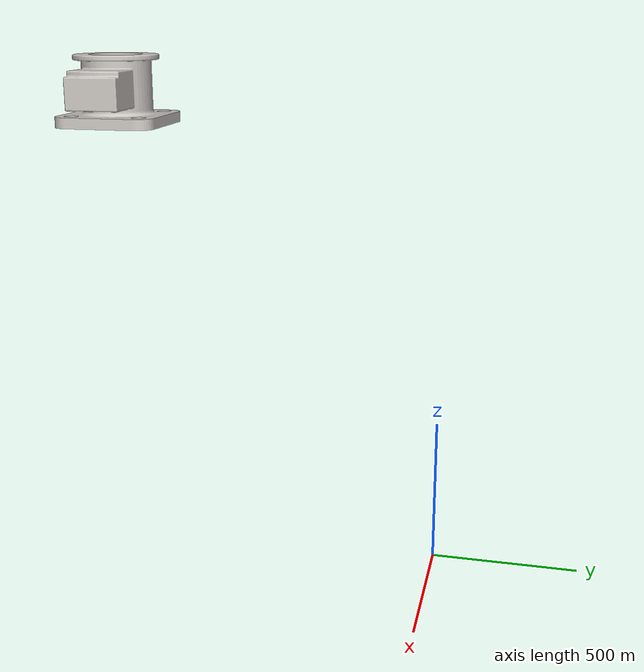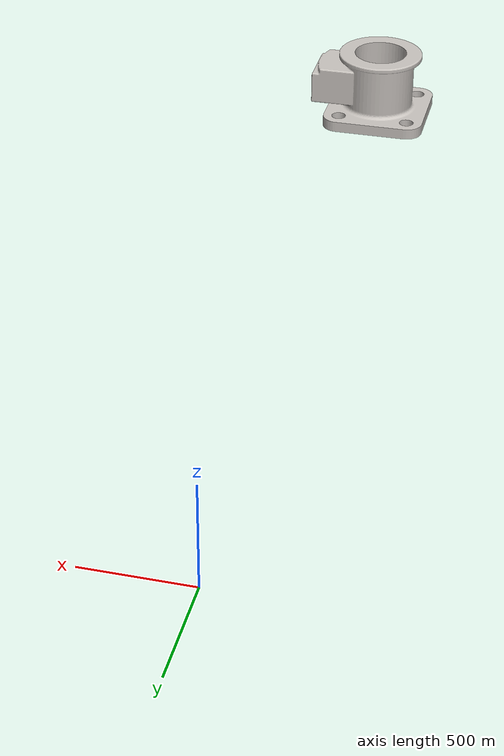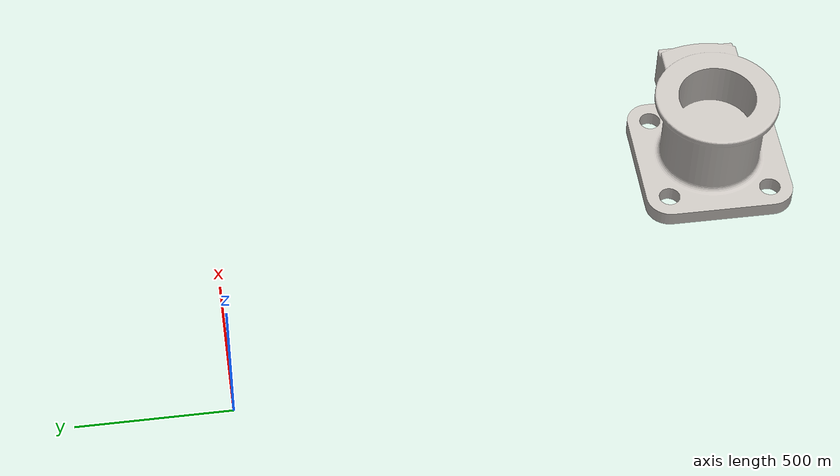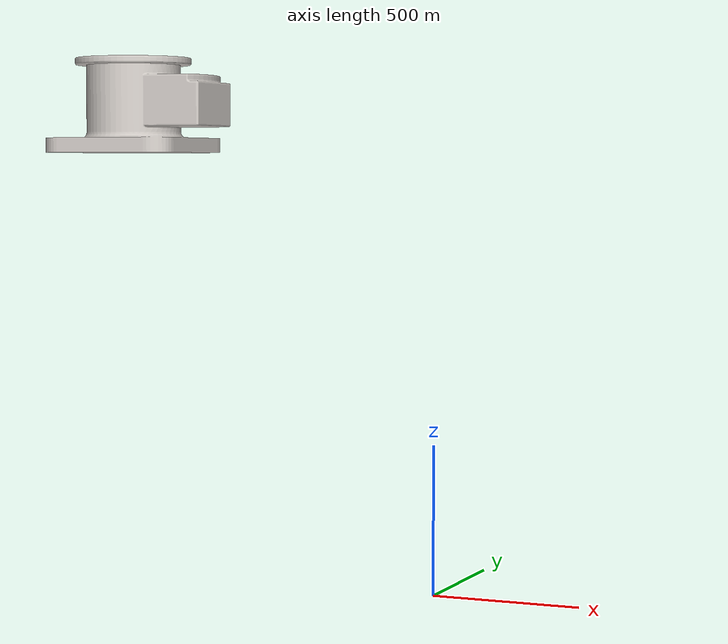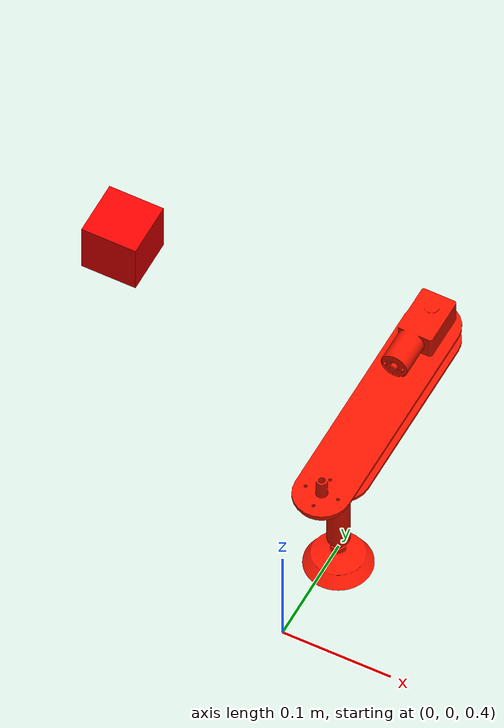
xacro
<?xml version="1.0"?>
<robot name="assem1" xmlns:xacro="http://www.ros.org/wiki/xacro">

  <xacro:include filename="$(find assem1_description)/urdf/mobile_manipulator.xacro" />
  <xacro:include filename="$(find assem1_description)/urdf/gazebo.xacro" />
  <xacro:include filename="$(find assem1_description)/urdf/ros2_control.xacro" />
  <xacro:include filename="$(find assem1_description)/urdf/sensors.xacro" />

</robot>

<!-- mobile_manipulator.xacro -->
<robot name="assem1" xmlns:xacro="http://www.ros.org/wiki/xacro">

  <material name="silver"><color rgba="0.776 0.756 0.737 1" /></material>
  <material name="dark_gray"><color rgba="0.3 0.3 0.3 1" /></material>
  <material name="red_arm"><color rgba="0.988 0.082 0 1" /></material>

  <link name="world" />

  <link name="base_link">
    <inertial>
      <origin xyz="0 0 0" rpy="0 0 0"/>
      <mass value="10"/>
      <inertia ixx="0.1" ixy="0" ixz="0" iyy="0.1" iyz="0" izz="0.1"/>
    </inertial>
    <visual>
      <geometry>
        <mesh filename="package://assem1_description/meshes/base_link.STL"/>
      </geometry>
      <material name="silver"/>
    </visual>
    <collision>
      <geometry>
        <mesh filename="package://assem1_description/meshes/base_link.STL"/>
      </geometry>
    </collision>
  </link>

  <joint name="virtual_joint" type="fixed">
      <parent link="world"/>
      <child link="base_link"/>
      <origin xyz="0 0 0" rpy="0 0 0"/>
  </joint>

  <link name="arm_link1">
    <inertial>
      <origin xyz="0 0 0" rpy="0 0 0"/>
      <mass value="1"/>
      <inertia ixx="0.001" ixy="0" ixz="0" iyy="0.001" iyz="0" izz="0.001"/>
    </inertial>
    <visual>
      <geometry>
        <mesh filename="package://assem1_description/meshes/Armlink1.STL"/>
      </geometry>
      <material name="red_arm"/>
    </visual>
    <collision>
      <geometry>
        <mesh filename="package://assem1_description/meshes/Armlink1.STL"/>
      </geometry>
    </collision>
  </link>

  <link name="arm_link2">
    <inertial>
      <origin xyz="0 0 0" rpy="0 0 0"/>
      <mass value="1"/>
      <inertia ixx="0.001" ixy="0" ixz="0" iyy="0.001" iyz="0" izz="0.001"/>
    </inertial>
    <visual>
      <geometry>
        <mesh filename="package://assem1_description/meshes/armlink2.STL"/>
      </geometry>
      <material name="red_arm"/>
    </visual>
    <collision>
      <geometry>
        <mesh filename="package://assem1_description/meshes/armlink2.STL"/>
      </geometry>
    </collision>
  </link>

  <joint name="joint_1" type="revolute">
    <origin xyz="0 0.07 0.5" rpy="0 0 0"/>
    <parent link="base_link"/>
    <child link="arm_link1"/>
    <axis xyz="0 0 1"/>
    <limit lower="-0.785" upper="0.785" effort="100" velocity="3"/>
  </joint>

  <joint name="joint_2" type="revolute">
    <origin xyz="0 0.196 -0.02" rpy="0 0 0"/>
    <parent link="arm_link1"/>
    <child link="arm_link2"/>
    <axis xyz="0 0 1"/>
    <limit lower="-3.14" upper="3.14" effort="100" velocity="3"/>
  </joint>

</robot>

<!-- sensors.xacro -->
<robot name="assem1" xmlns:xacro="http://www.ros.org/wiki/xacro">

    <!-- ================= PROPERTIES ================= -->
    <xacro:property name="PI" value="3.14159265359"/>

    <!-- ================= MATERIAL ================= -->
    <material name="red">
        <color rgba="1 0 0 1"/>
    </material>

    <!-- ================= CAMERA LINK ================= -->
    <link name="camera_link">
        <inertial>
            <origin xyz="0 0 0" rpy="0 0 0"/>
            <mass value="0.1"/>
            <inertia ixx="0.01" ixy="0" ixz="0" iyy="0.01" iyz="0" izz="0.01"/>
        </inertial>

        <visual>
            <origin xyz="0 0 0" rpy="0 0 0"/>
            <geometry>
                <box size="0.05 0.05 0.05"/>
            </geometry>
            <material name="red"/>
        </visual>

        <collision>
            <origin xyz="0 0 0" rpy="0 0 0"/>
            <geometry>
                <box size="0.05 0.05 0.05"/>
            </geometry>
        </collision>
    </link>

    <!-- ================= CAMERA JOINT ================= -->
    <joint name="camera_joint" type="fixed">
        <origin xyz="-0.2 0.1 0.7" rpy="0 1.57 0"/>
        <parent link="base_link"/>   <!-- مهم: مش panda_link0 -->
        <child link="camera_link"/>
    </joint>

    <!-- ================= OPTICAL FRAME ================= -->
    <link name="camera_link_optical"/>

    <joint name="camera_optical_joint" type="fixed">
        <parent link="camera_link"/>
        <child link="camera_link_optical"/>
        <origin xyz="0 0 0" rpy="${-PI/2} 0 ${-PI/2}"/>
    </joint>

    <!-- ================= GAZEBO CAMERA ================= -->
    <gazebo reference="camera_link">
        <sensor name="camera" type="camera">

            <pose>0 0 0 0 0 0</pose>
            <visualize>true</visualize>
            <update_rate>30.0</update_rate>
            <always_on>true</always_on>

            <topic>/camera/image_raw</topic>
            <gz_frame_id>camera_link_optical</gz_frame_id>

            <camera name="rgb_camera">
                <camera_info_topic>/camera/camera_info</camera_info_topic>
                <horizontal_fov>1.047</horizontal_fov>

                <image>
                    <width>640</width>
                    <height>480</height>
                    <format>R8G8B8</format>
                </image>

                <clip>
                    <near>0.05</near>
                    <far>10.0</far>
                </clip>
            </camera>

        </sensor>
    </gazebo>

</robot>
